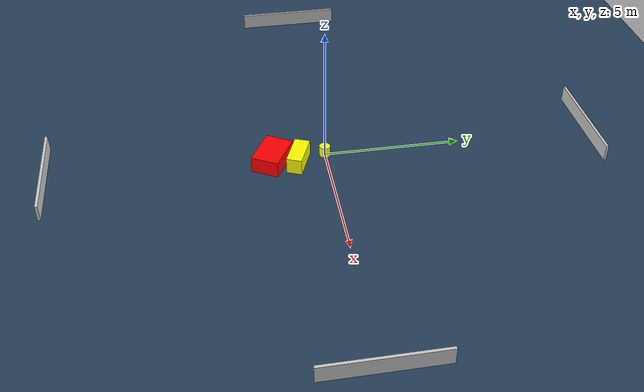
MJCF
<?xml version="1.0" ?>
<mujoco model="generated_environment">
  <option timestep="0.01" integrator="RK4" cone="elliptic"/>
  <default>
    <geom density="1"/>
  </default>
  <asset>
    <texture builtin="gradient" height="3072" name="skybox" rgb1="0.3 0.5 0.7" rgb2="0 0 0" type="skybox" width="512"/>
    <texture builtin="checker" height="300" name="groundplane" rgb1="0.2 0.3 0.4" rgb2="0.1 0.2 0.3" type="2d" width="300"/>
    <material name="groundplane" reflectance="0.2" texrepeat="5 5" texture="groundplane"/>
  </asset>
  <worldbody>
    <light dir="0 0 -1" directional="true" pos="0 0 1.5"/>
    <geom condim="3" friction="0.5 0.005 0.001" material="groundplane" name="floor" pos="0 0 0" size="0 0 0.05" type="plane"/>
    <body name="walls">
      <geom name="wall_1" condim="4" pos="-10.0 0.0 0.3" rgba="0.800000011920929 0.800000011920929 0.800000011920929 1.0" size="0.05 2.0 0.3" type="box"/>
      <geom name="wall_2" condim="4" pos="10.0 0.0 0.3" rgba="0.800000011920929 0.800000011920929 0.800000011920929 1.0" size="0.05 2.0 0.3" type="box"/>
      <geom name="wall_3" condim="4" pos="0.0 -10.0 0.3" rgba="0.800000011920929 0.800000011920929 0.800000011920929 1.0" size="2.0 0.05 0.3" type="box"/>
      <geom name="wall_4" condim="4" pos="0.0 10.0 0.3" rgba="0.800000011920929 0.800000011920929 0.800000011920929 1.0" size="2.0 0.05 0.3" type="box"/>
    </body>
    <body name="robot">
      <joint name="joint_x" type="slide" pos="0 0 0" axis="1 0 0"/>
      <joint name="joint_y" type="slide" pos="0 0 0" axis="0 1 0"/>
      <geom name="robot" type="cylinder" pos="0.0 0.0 0.2" size="0.2 0.2 0.0" mass="5.0" friction="1.0 0.005 0.0001" condim="4" rgba="1.0 1.0 0.0 1.0"/>
    </body>
    <body name="obstacle_1_movable">
      <geom name="obstacle_1_movable" condim="4" pos="0.34183775067519384 -1.0231398516910386 0.3" euler="0 0 247.894921546019" friction="0.0 0.005 0.001" rgba="1.0 1.0 0.0 1.0" size="0.28058879540192067 0.6249544038996364 0.3" type="box" mass="0.1"/>
      <joint type="free"/>
    </body>
    <body name="obstacle_2_static">
      <geom name="obstacle_2_static" condim="4" pos="0.15259980137406826 -1.94285497531316 0.3" euler="0 0 150.67275866255326" friction="0.0 0.005 0.001" rgba="1.0 0.0 0.0 1.0" size="0.7221809144713436 0.5070724860113889 0.3" type="box"/>
    </body>
  </worldbody>
  <actuator>
    <motor name="actuator_x" joint="joint_x" gear="1" ctrlrange="-1 1"/>
    <motor name="actuator_y" joint="joint_y" gear="1" ctrlrange="-1 1"/>
  </actuator>
</mujoco>
